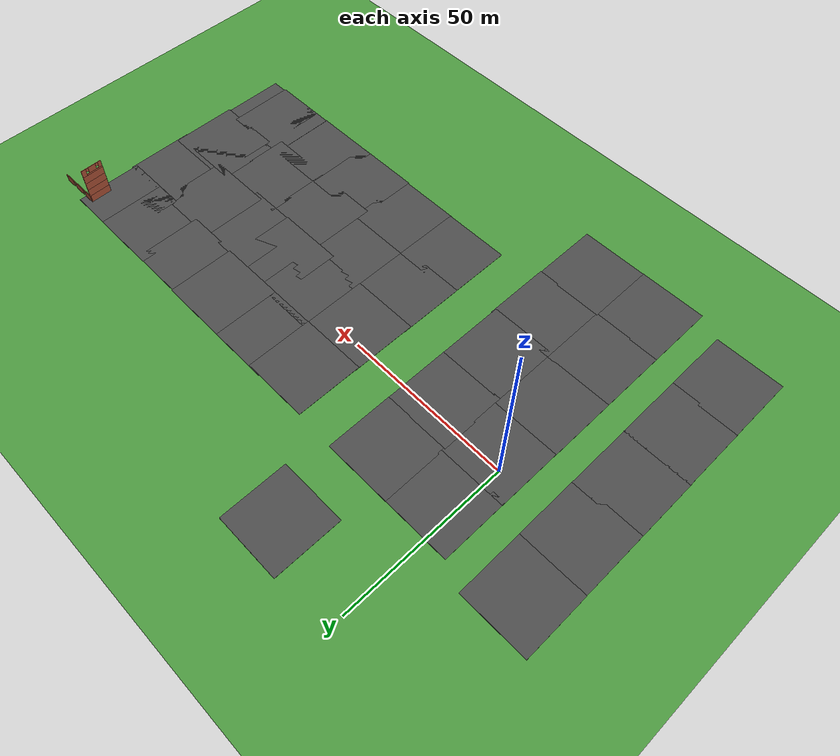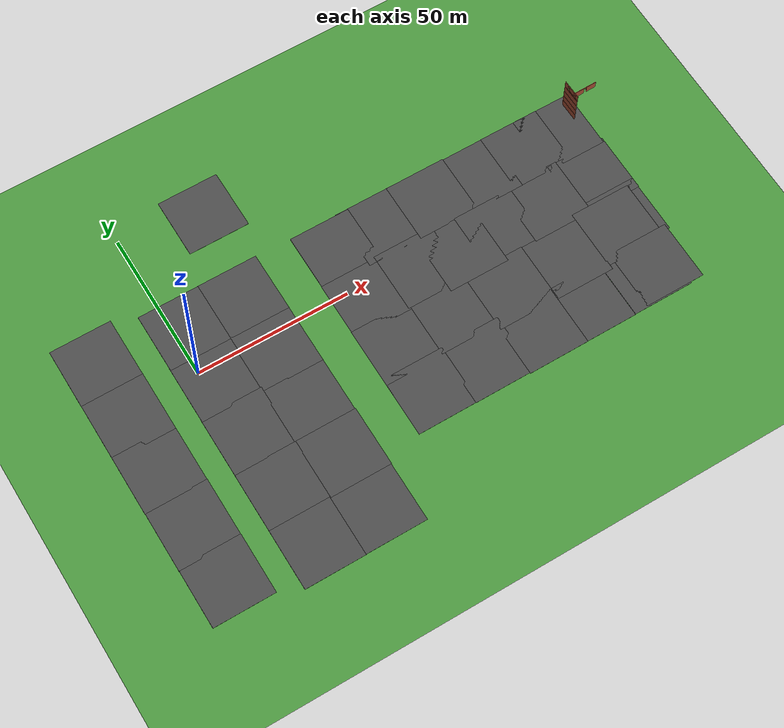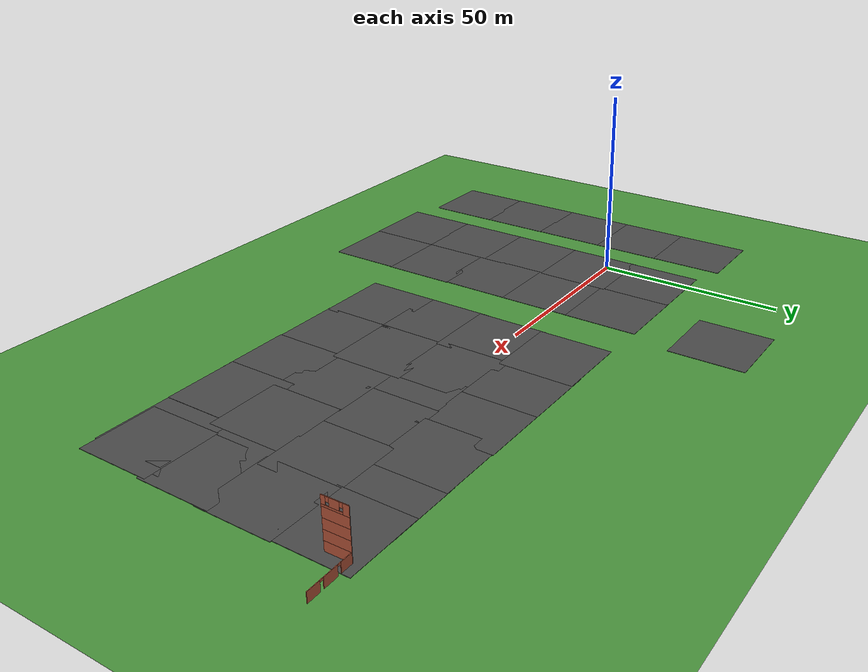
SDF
<sdf version="1.7">
 <world name="default">
  <model name="ground_plane">
   <static>1</static>
   <link name="link">
    <collision name="collision">
     <geometry><plane><normal>0 0 1</normal><size>100 100</size></plane></geometry>
     <surface>
      <contact><collide_bitmask>65535</collide_bitmask></contact>
      <friction><ode><mu>100</mu><mu2>50</mu2></ode></friction>
     </surface>
    </collision>
    <visual name="grass">
     <pose>0 0 -0.1 0 -0 0</pose>
     <cast_shadows>0</cast_shadows>
     <geometry><plane><normal>0 0 1</normal><size>1000 1000</size></plane></geometry>
     <material>
      <script><uri>file://media/materials/scripts/gazebo.material</uri><name>Gazebo/Grass</name></script>
     </material>
    </visual>
   </link>
  </model>
  <model name="asphalt_plane">
   <static>1</static>
   <link name="link">
    <collision name="collision"><geometry><box><size>20 20 0.1</size></box></geometry></collision>
    <visual name="visual">
     <cast_shadows>0</cast_shadows>
     <geometry><box><size>20 20 0.1</size></box></geometry>
     <material>
      <script>
       <uri>model://asphalt_plane/materials/scripts</uri>
       <uri>model://asphalt_plane/materials/textures</uri>
       <name>vrc/asphalt</name>
      </script>
     </material>
    </visual>
   </link>
   <pose>26.7323 45.4974 0 0 -0 0</pose>
  </model>
  <model name="asphalt_plane_3">
   <static>1</static>
   <link name="link">
    <collision name="collision"><geometry><box><size>20 20 0.1</size></box></geometry></collision>
    <visual name="visual">
     <cast_shadows>0</cast_shadows>
     <geometry><box><size>20 20 0.1</size></box></geometry>
     <material>
      <script>
       <uri>model://asphalt_plane/materials/scripts</uri>
       <uri>model://asphalt_plane/materials/textures</uri>
       <name>vrc/asphalt</name>
      </script>
     </material>
    </visual>
   </link>
   <pose>-23.9043 18.1213 0 0 -0 0</pose>
  </model>
  <model name="asphalt_plane_4">
   <static>1</static>
   <link name="link">
    <collision name="collision"><geometry><box><size>20 20 0.1</size></box></geometry></collision>
    <visual name="visual">
     <cast_shadows>0</cast_shadows>
     <geometry><box><size>20 20 0.1</size></box></geometry>
     <material>
      <script>
       <uri>model://asphalt_plane/materials/scripts</uri>
       <uri>model://asphalt_plane/materials/textures</uri>
       <name>vrc/asphalt</name>
      </script>
     </material>
    </visual>
   </link>
   <pose>-23.8635 -1.81275 0 0 -0 0</pose>
  </model>
  <model name="asphalt_plane_5">
   <static>1</static>
   <link name="link">
    <collision name="collision"><geometry><box><size>20 20 0.1</size></box></geometry></collision>
    <visual name="visual">
     <cast_shadows>0</cast_shadows>
     <geometry><box><size>20 20 0.1</size></box></geometry>
     <material>
      <script>
       <uri>model://asphalt_plane/materials/scripts</uri>
       <uri>model://asphalt_plane/materials/textures</uri>
       <name>vrc/asphalt</name>
      </script>
     </material>
    </visual>
   </link>
   <pose>-23.8605 -20.3721 0 0 -0 0</pose>
  </model>
  <model name="asphalt_plane_15">
   <static>1</static>
   <link name="link">
    <collision name="collision"><geometry><box><size>20 20 0.1</size></box></geometry></collision>
    <visual name="visual">
     <cast_shadows>0</cast_shadows>
     <geometry><box><size>20 20 0.1</size></box></geometry>
     <material>
      <script>
       <uri>model://asphalt_plane/materials/scripts</uri>
       <uri>model://asphalt_plane/materials/textures</uri>
       <name>vrc/asphalt</name>
      </script>
     </material>
    </visual>
   </link>
   <pose>54.6058 -4.08801 0 0 -0 0</pose>
  </model>
  <model name="asphalt_plane_16">
   <static>1</static>
   <link name="link">
    <collision name="collision"><geometry><box><size>20 20 0.1</size></box></geometry></collision>
    <visual name="visual">
     <cast_shadows>0</cast_shadows>
     <geometry><box><size>20 20 0.1</size></box></geometry>
     <material>
      <script>
       <uri>model://asphalt_plane/materials/scripts</uri>
       <uri>model://asphalt_plane/materials/textures</uri>
       <name>vrc/asphalt</name>
      </script>
     </material>
    </visual>
   </link>
   <pose>54.718 14.3936 0 0 -0 0</pose>
  </model>
  <model name="asphalt_plane_15_clone">
   <static>1</static>
   <link name="link">
    <collision name="collision"><geometry><box><size>20 20 0.1</size></box></geometry></collision>
    <visual name="visual">
     <cast_shadows>0</cast_shadows>
     <geometry><box><size>20 20 0.1</size></box></geometry>
     <material>
      <script>
       <uri>model://asphalt_plane/materials/scripts</uri>
       <uri>model://asphalt_plane/materials/textures</uri>
       <name>vrc/asphalt</name>
      </script>
     </material>
    </visual>
   </link>
   <pose>70.5176 14.5413 0 0 -0 0</pose>
  </model>
  <model name="asphalt_plane_15_clone_0">
   <static>1</static>
   <link name="link">
    <collision name="collision"><geometry><box><size>20 20 0.1</size></box></geometry></collision>
    <visual name="visual">
     <cast_shadows>0</cast_shadows>
     <geometry><box><size>20 20 0.1</size></box></geometry>
     <material>
      <script>
       <uri>model://asphalt_plane/materials/scripts</uri>
       <uri>model://asphalt_plane/materials/textures</uri>
       <name>vrc/asphalt</name>
      </script>
     </material>
    </visual>
   </link>
   <pose>88.2896 14.5224 0 0 -0 0</pose>
  </model>
  <model name="asphalt_plane_15_clone_1">
   <static>1</static>
   <link name="link">
    <collision name="collision"><geometry><box><size>20 20 0.1</size></box></geometry></collision>
    <visual name="visual">
     <cast_shadows>0</cast_shadows>
     <geometry><box><size>20 20 0.1</size></box></geometry>
     <material>
      <script>
       <uri>model://asphalt_plane/materials/scripts</uri>
       <uri>model://asphalt_plane/materials/textures</uri>
       <name>vrc/asphalt</name>
      </script>
     </material>
    </visual>
   </link>
   <pose>104.278 14.2611 0 0 -0 0</pose>
  </model>
  <model name="asphalt_plane_15_clone_2">
   <static>1</static>
   <link name="link">
    <collision name="collision"><geometry><box><size>20 20 0.1</size></box></geometry></collision>
    <visual name="visual">
     <cast_shadows>0</cast_shadows>
     <geometry><box><size>20 20 0.1</size></box></geometry>
     <material>
      <script>
       <uri>model://asphalt_plane/materials/scripts</uri>
       <uri>model://asphalt_plane/materials/textures</uri>
       <name>vrc/asphalt</name>
      </script>
     </material>
    </visual>
   </link>
   <pose>121.903 14.3393 0 0 -0 0</pose>
  </model>
  <model name="asphalt_plane_15_clone_3">
   <static>1</static>
   <link name="link">
    <collision name="collision"><geometry><box><size>20 20 0.1</size></box></geometry></collision>
    <visual name="visual">
     <cast_shadows>0</cast_shadows>
     <geometry><box><size>20 20 0.1</size></box></geometry>
     <material>
      <script>
       <uri>model://asphalt_plane/materials/scripts</uri>
       <uri>model://asphalt_plane/materials/textures</uri>
       <name>vrc/asphalt</name>
      </script>
     </material>
    </visual>
   </link>
   <pose>133.716 14.2705 0 0 -0 0</pose>
  </model>
  <model name="asphalt_plane_15_clone_4">
   <static>1</static>
   <link name="link">
    <collision name="collision"><geometry><box><size>20 20 0.1</size></box></geometry></collision>
    <visual name="visual">
     <cast_shadows>0</cast_shadows>
     <geometry><box><size>20 20 0.1</size></box></geometry>
     <material>
      <script>
       <uri>model://asphalt_plane/materials/scripts</uri>
       <uri>model://asphalt_plane/materials/textures</uri>
       <name>vrc/asphalt</name>
      </script>
     </material>
    </visual>
   </link>
   <pose>54.5062 -21.4907 0 0 -0 0</pose>
  </model>
  <model name="asphalt_plane_15_clone_5">
   <static>1</static>
   <link name="link">
    <collision name="collision"><geometry><box><size>20 20 0.1</size></box></geometry></collision>
    <visual name="visual">
     <cast_shadows>0</cast_shadows>
     <geometry><box><size>20 20 0.1</size></box></geometry>
     <material>
      <script>
       <uri>model://asphalt_plane/materials/scripts</uri>
       <uri>model://asphalt_plane/materials/textures</uri>
       <name>vrc/asphalt</name>
      </script>
     </material>
    </visual>
   </link>
   <pose>54.535 -39.3314 0 0 -0 0</pose>
  </model>
  <model name="asphalt_plane_15_clone_7">
   <static>1</static>
   <link name="link">
    <collision name="collision"><geometry><box><size>20 20 0.1</size></box></geometry></collision>
    <visual name="visual">
     <cast_shadows>0</cast_shadows>
     <geometry><box><size>20 20 0.1</size></box></geometry>
     <material>
      <script>
       <uri>model://asphalt_plane/materials/scripts</uri>
       <uri>model://asphalt_plane/materials/textures</uri>
       <name>vrc/asphalt</name>
      </script>
     </material>
    </visual>
   </link>
   <pose>73.605 -21.2666 0 0 -0 0</pose>
  </model>
  <model name="asphalt_plane_15_clone_8">
   <static>1</static>
   <link name="link">
    <collision name="collision"><geometry><box><size>20 20 0.1</size></box></geometry></collision>
    <visual name="visual">
     <cast_shadows>0</cast_shadows>
     <geometry><box><size>20 20 0.1</size></box></geometry>
     <material>
      <script>
       <uri>model://asphalt_plane/materials/scripts</uri>
       <uri>model://asphalt_plane/materials/textures</uri>
       <name>vrc/asphalt</name>
      </script>
     </material>
    </visual>
   </link>
   <pose>73.6563 -39.4133 0 0 -0 0</pose>
  </model>
  <model name="asphalt_plane_15_clone_2_clone_2">
   <static>1</static>
   <link name="link">
    <collision name="collision"><geometry><box><size>20 20 0.1</size></box></geometry></collision>
    <visual name="visual">
     <cast_shadows>0</cast_shadows>
     <geometry><box><size>20 20 0.1</size></box></geometry>
     <material>
      <script>
       <uri>model://asphalt_plane/materials/scripts</uri>
       <uri>model://asphalt_plane/materials/textures</uri>
       <name>vrc/asphalt</name>
      </script>
     </material>
    </visual>
   </link>
   <pose>92.3833 -23.3758 0 0 -0 0</pose>
  </model>
  <model name="asphalt_plane_15_clone_2_clone_3">
   <static>1</static>
   <link name="link">
    <collision name="collision"><geometry><box><size>20 20 0.1</size></box></geometry></collision>
    <visual name="visual">
     <cast_shadows>0</cast_shadows>
     <geometry><box><size>20 20 0.1</size></box></geometry>
     <material>
      <script>
       <uri>model://asphalt_plane/materials/scripts</uri>
       <uri>model://asphalt_plane/materials/textures</uri>
       <name>vrc/asphalt</name>
      </script>
     </material>
    </visual>
   </link>
   <pose>111.599 -23.5947 0 0 -0 0</pose>
  </model>
  <model name="asphalt_plane_15_clone_2_clone_1">
   <static>1</static>
   <link name="link">
    <collision name="collision"><geometry><box><size>20 20 0.1</size></box></geometry></collision>
    <visual name="visual">
     <cast_shadows>0</cast_shadows>
     <geometry><box><size>20 20 0.1</size></box></geometry>
     <material>
      <script>
       <uri>model://asphalt_plane/materials/scripts</uri>
       <uri>model://asphalt_plane/materials/textures</uri>
       <name>vrc/asphalt</name>
      </script>
     </material>
    </visual>
   </link>
   <pose>134.118 -4.34987 0 0 -0 0</pose>
  </model>
  <model name="asphalt_plane_15_clone_2_clone_0">
   <static>1</static>
   <link name="link">
    <collision name="collision"><geometry><box><size>20 20 0.1</size></box></geometry></collision>
    <visual name="visual">
     <cast_shadows>0</cast_shadows>
     <geometry><box><size>20 20 0.1</size></box></geometry>
     <material>
      <script>
       <uri>model://asphalt_plane/materials/scripts</uri>
       <uri>model://asphalt_plane/materials/textures</uri>
       <name>vrc/asphalt</name>
      </script>
     </material>
    </visual>
   </link>
   <pose>117.188 -4.07273 0 0 -0 0</pose>
  </model>
  <model name="asphalt_plane_15_clone_2_clone">
   <static>1</static>
   <link name="link">
    <collision name="collision"><geometry><box><size>20 20 0.1</size></box></geometry></collision>
    <visual name="visual">
     <cast_shadows>0</cast_shadows>
     <geometry><box><size>20 20 0.1</size></box></geometry>
     <material>
      <script>
       <uri>model://asphalt_plane/materials/scripts</uri>
       <uri>model://asphalt_plane/materials/textures</uri>
       <name>vrc/asphalt</name>
      </script>
     </material>
    </visual>
   </link>
   <pose>100.276 -4.89196 0 0 -0 0</pose>
  </model>
  <model name="asphalt_plane_15_clone_2_clone_5">
   <static>1</static>
   <link name="link">
    <collision name="collision"><geometry><box><size>20 20 0.1</size></box></geometry></collision>
    <visual name="visual">
     <cast_shadows>0</cast_shadows>
     <geometry><box><size>20 20 0.1</size></box></geometry>
     <material>
      <script>
       <uri>model://asphalt_plane/materials/scripts</uri>
       <uri>model://asphalt_plane/materials/textures</uri>
       <name>vrc/asphalt</name>
      </script>
     </material>
    </visual>
   </link>
   <pose>72.9682 -3.60679 0 0 -0 0</pose>
  </model>
  <model name="asphalt_plane_15_clone_2_clone_6">
   <static>1</static>
   <link name="link">
    <collision name="collision"><geometry><box><size>20 20 0.1</size></box></geometry></collision>
    <visual name="visual">
     <cast_shadows>0</cast_shadows>
     <geometry><box><size>20 20 0.1</size></box></geometry>
     <material>
      <script>
       <uri>model://asphalt_plane/materials/scripts</uri>
       <uri>model://asphalt_plane/materials/textures</uri>
       <name>vrc/asphalt</name>
      </script>
     </material>
    </visual>
   </link>
   <pose>86.6491 -5.14218 0 0 -0 0</pose>
  </model>
  <model name="asphalt_plane_15_clone_2_clone_4">
   <static>1</static>
   <link name="link">
    <collision name="collision"><geometry><box><size>20 20 0.1</size></box></geometry></collision>
    <visual name="visual">
     <cast_shadows>0</cast_shadows>
     <geometry><box><size>20 20 0.1</size></box></geometry>
     <material>
      <script>
       <uri>model://asphalt_plane/materials/scripts</uri>
       <uri>model://asphalt_plane/materials/textures</uri>
       <name>vrc/asphalt</name>
      </script>
     </material>
    </visual>
   </link>
   <pose>131.281 -22.1535 0 0 -0 0</pose>
  </model>
  <model name="asphalt_plane_15_clone_2_clone_7">
   <static>1</static>
   <link name="link">
    <collision name="collision"><geometry><box><size>20 20 0.1</size></box></geometry></collision>
    <visual name="visual">
     <cast_shadows>0</cast_shadows>
     <geometry><box><size>20 20 0.1</size></box></geometry>
     <material>
      <script>
       <uri>model://asphalt_plane/materials/scripts</uri>
       <uri>model://asphalt_plane/materials/textures</uri>
       <name>vrc/asphalt</name>
      </script>
     </material>
    </visual>
   </link>
   <pose>92.1022 -39.6823 0 0 -0 0</pose>
  </model>
  <model name="asphalt_plane_15_clone_2_clone_8">
   <static>1</static>
   <link name="link">
    <collision name="collision"><geometry><box><size>20 20 0.1</size></box></geometry></collision>
    <visual name="visual">
     <cast_shadows>0</cast_shadows>
     <geometry><box><size>20 20 0.1</size></box></geometry>
     <material>
      <script>
       <uri>model://asphalt_plane/materials/scripts</uri>
       <uri>model://asphalt_plane/materials/textures</uri>
       <name>vrc/asphalt</name>
      </script>
     </material>
    </visual>
   </link>
   <pose>108.868 -39.6334 0 0 -0 0</pose>
  </model>
  <model name="asphalt_plane_15_clone_2_clone_9">
   <static>1</static>
   <link name="link">
    <collision name="collision"><geometry><box><size>20 20 0.1</size></box></geometry></collision>
    <visual name="visual">
     <cast_shadows>0</cast_shadows>
     <geometry><box><size>20 20 0.1</size></box></geometry>
     <material>
      <script>
       <uri>model://asphalt_plane/materials/scripts</uri>
       <uri>model://asphalt_plane/materials/textures</uri>
       <name>vrc/asphalt</name>
      </script>
     </material>
    </visual>
   </link>
   <pose>128.92 -39.5345 0 0 -0 0</pose>
  </model>
  <model name="asphalt_plane_15_clone_2_clone_10">
   <static>1</static>
   <link name="link">
    <collision name="collision"><geometry><box><size>20 20 0.1</size></box></geometry></collision>
    <visual name="visual">
     <cast_shadows>0</cast_shadows>
     <geometry><box><size>20 20 0.1</size></box></geometry>
     <material>
      <script>
       <uri>model://asphalt_plane/materials/scripts</uri>
       <uri>model://asphalt_plane/materials/textures</uri>
       <name>vrc/asphalt</name>
      </script>
     </material>
    </visual>
   </link>
   <pose>133.337 -39.1111 0 0 -0 0</pose>
  </model>
  <model name="asphalt_plane_15_clone_2_clone_11">
   <static>1</static>
   <link name="link">
    <collision name="collision"><geometry><box><size>20 20 0.1</size></box></geometry></collision>
    <visual name="visual">
     <cast_shadows>0</cast_shadows>
     <geometry><box><size>20 20 0.1</size></box></geometry>
     <material>
      <script>
       <uri>model://asphalt_plane/materials/scripts</uri>
       <uri>model://asphalt_plane/materials/textures</uri>
       <name>vrc/asphalt</name>
      </script>
     </material>
    </visual>
   </link>
   <pose>133.916 -20.8174 0 0 -0 0</pose>
  </model>
  <model name="my_building_1">
   <link name="Wall_19">
    <pose>-0.950574 0 0 0 -0 1.5708</pose>
    <visual name="Wall_19_Visual_3">
     <pose>-2.20979 0 2.25 0 -0 0</pose>
     <geometry><box><size>0.9 0.15 0.5</size></box></geometry>
     <material>
      <script><uri>file://media/materials/scripts/gazebo.material</uri><name>Gazebo/Bricks</name></script>
      <ambient>1 1 1 1</ambient>
      <shader type="pixel"/>
     </material>
     <meta><layer>0</layer></meta>
    </visual>
    <visual name="Wall_19_Visual_2">
     <pose>4.53056 0 1.25 0 -0 0</pose>
     <geometry><box><size>3.18887 0.15 2.5</size></box></geometry>
     <material>
      <script><uri>file://media/materials/scripts/gazebo.material</uri><name>Gazebo/Bricks</name></script>
      <ambient>1 1 1 1</ambient>
      <shader type="pixel"/>
     </material>
     <meta><layer>0</layer></meta>
    </visual>
    <visual name="Wall_19_Visual_4">
     <pose>2.48613 0 2.25 0 -0 0</pose>
     <geometry><box><size>0.9 0.15 0.5</size></box></geometry>
     <material>
      <script><uri>file://media/materials/scripts/gazebo.material</uri><name>Gazebo/Bricks</name></script>
      <ambient>1 1 1 1</ambient>
      <shader type="pixel"/>
     </material>
     <meta><layer>0</layer></meta>
    </visual>
    <visual name="Wall_19_Visual_1">
     <pose>0.138171 0 1.25 0 -0 0</pose>
     <geometry><box><size>3.79591 0.15 2.5</size></box></geometry>
     <material>
      <script><uri>file://media/materials/scripts/gazebo.material</uri><name>Gazebo/Bricks</name></script>
      <ambient>1 1 1 1</ambient>
      <shader type="pixel"/>
     </material>
     <meta><layer>0</layer></meta>
    </visual>
    <visual name="Wall_19_Visual_0">
     <pose>-4.39239 0 1.25 0 -0 0</pose>
     <geometry><box><size>3.46522 0.15 2.5</size></box></geometry>
     <material>
      <script><uri>file://media/materials/scripts/gazebo.material</uri><name>Gazebo/Bricks</name></script>
      <ambient>1 1 1 1</ambient>
      <shader type="pixel"/>
     </material>
     <meta><layer>0</layer></meta>
    </visual>
    <collision name="Wall_19_Collision_0">
     <pose>-4.39239 0 1.25 0 -0 0</pose>
     <geometry><box><size>3.46522 0.15 2.5</size></box></geometry>
     <surface>
      <friction>
       <ode><mu>1</mu><mu2>1</mu2><fdir1>0 0 0</fdir1><slip1>0</slip1><slip2>0</slip2></ode>
       <torsional>
        <coefficient>1</coefficient>
        <patch_radius>0</patch_radius>
        <surface_radius>0</surface_radius>
        <use_patch_radius>1</use_patch_radius>
        <ode><slip>0</slip></ode>
       </torsional>
      </friction>
      <bounce><restitution_coefficient>0</restitution_coefficient><threshold>1e+06</threshold></bounce>
      <contact>
       <collide_without_contact>0</collide_without_contact>
       <collide_without_contact_bitmask>1</collide_without_contact_bitmask>
       <collide_bitmask>1</collide_bitmask>
       <ode>
        <soft_cfm>0</soft_cfm>
        <soft_erp>0.2</soft_erp>
        <kp>1e+13</kp>
        <kd>1</kd>
        <max_vel>0.01</max_vel>
        <min_depth>0</min_depth>
       </ode>
       <bullet>
        <split_impulse>1</split_impulse>
        <split_impulse_penetration_threshold>-0.01</split_impulse_penetration_threshold>
        <soft_cfm>0</soft_cfm>
        <soft_erp>0.2</soft_erp>
        <kp>1e+13</kp>
        <kd>1</kd>
       </bullet>
      </contact>
     </surface>
    </collision>
    <collision name="Wall_19_Collision_2">
     <pose>4.53056 0 1.25 0 -0 0</pose>
     <geometry><box><size>3.18887 0.15 2.5</size></box></geometry>
     <surface>
      <friction>
       <ode><mu>1</mu><mu2>1</mu2><fdir1>0 0 0</fdir1><slip1>0</slip1><slip2>0</slip2></ode>
       <torsional>
        <coefficient>1</coefficient>
        <patch_radius>0</patch_radius>
        <surface_radius>0</surface_radius>
        <use_patch_radius>1</use_patch_radius>
        <ode><slip>0</slip></ode>
       </torsional>
      </friction>
      <bounce><restitution_coefficient>0</restitution_coefficient><threshold>1e+06</threshold></bounce>
      <contact>
       <collide_without_contact>0</collide_without_contact>
       <collide_without_contact_bitmask>1</collide_without_contact_bitmask>
       <collide_bitmask>1</collide_bitmask>
       <ode>
        <soft_cfm>0</soft_cfm>
        <soft_erp>0.2</soft_erp>
        <kp>1e+13</kp>
        <kd>1</kd>
        <max_vel>0.01</max_vel>
        <min_depth>0</min_depth>
       </ode>
       <bullet>
        <split_impulse>1</split_impulse>
        <split_impulse_penetration_threshold>-0.01</split_impulse_penetration_threshold>
        <soft_cfm>0</soft_cfm>
        <soft_erp>0.2</soft_erp>
        <kp>1e+13</kp>
        <kd>1</kd>
       </bullet>
      </contact>
     </surface>
    </collision>
    <collision name="Wall_19_Collision_4">
     <pose>2.48613 0 2.25 0 -0 0</pose>
     <geometry><box><size>0.9 0.15 0.5</size></box></geometry>
     <surface>
      <friction>
       <ode><mu>1</mu><mu2>1</mu2><fdir1>0 0 0</fdir1><slip1>0</slip1><slip2>0</slip2></ode>
       <torsional>
        <coefficient>1</coefficient>
        <patch_radius>0</patch_radius>
        <surface_radius>0</surface_radius>
        <use_patch_radius>1</use_patch_radius>
        <ode><slip>0</slip></ode>
       </torsional>
      </friction>
      <bounce><restitution_coefficient>0</restitution_coefficient><threshold>1e+06</threshold></bounce>
      <contact>
       <collide_without_contact>0</collide_without_contact>
       <collide_without_contact_bitmask>1</collide_without_contact_bitmask>
       <collide_bitmask>1</collide_bitmask>
       <ode>
        <soft_cfm>0</soft_cfm>
        <soft_erp>0.2</soft_erp>
        <kp>1e+13</kp>
        <kd>1</kd>
        <max_vel>0.01</max_vel>
        <min_depth>0</min_depth>
       </ode>
       <bullet>
        <split_impulse>1</split_impulse>
        <split_impulse_penetration_threshold>-0.01</split_impulse_penetration_threshold>
        <soft_cfm>0</soft_cfm>
        <soft_erp>0.2</soft_erp>
        <kp>1e+13</kp>
        <kd>1</kd>
       </bullet>
      </contact>
     </surface>
    </collision>
    <collision name="Wall_19_Collision_3">
     <pose>-2.20979 0 2.25 0 -0 0</pose>
     <geometry><box><size>0.9 0.15 0.5</size></box></geometry>
     <surface>
      <friction>
       <ode><mu>1</mu><mu2>1</mu2><fdir1>0 0 0</fdir1><slip1>0</slip1><slip2>0</slip2></ode>
       <torsional>
        <coefficient>1</coefficient>
        <patch_radius>0</patch_radius>
        <surface_radius>0</surface_radius>
        <use_patch_radius>1</use_patch_radius>
        <ode><slip>0</slip></ode>
       </torsional>
      </friction>
      <bounce><restitution_coefficient>0</restitution_coefficient><threshold>1e+06</threshold></bounce>
      <contact>
       <collide_without_contact>0</collide_without_contact>
       <collide_without_contact_bitmask>1</collide_without_contact_bitmask>
       <collide_bitmask>1</collide_bitmask>
       <ode>
        <soft_cfm>0</soft_cfm>
        <soft_erp>0.2</soft_erp>
        <kp>1e+13</kp>
        <kd>1</kd>
        <max_vel>0.01</max_vel>
        <min_depth>0</min_depth>
       </ode>
       <bullet>
        <split_impulse>1</split_impulse>
        <split_impulse_penetration_threshold>-0.01</split_impulse_penetration_threshold>
        <soft_cfm>0</soft_cfm>
        <soft_erp>0.2</soft_erp>
        <kp>1e+13</kp>
        <kd>1</kd>
       </bullet>
      </contact>
     </surface>
    </collision>
    <collision name="Wall_19_Collision_1">
     <pose>0.138171 0 1.25 0 -0 0</pose>
     <geometry><box><size>3.79591 0.15 2.5</size></box></geometry>
     <surface>
      <friction>
       <ode><mu>1</mu><mu2>1</mu2><fdir1>0 0 0</fdir1><slip1>0</slip1><slip2>0</slip2></ode>
       <torsional>
        <coefficient>1</coefficient>
        <patch_radius>0</patch_radius>
        <surface_radius>0</surface_radius>
        <use_patch_radius>1</use_patch_radius>
        <ode><slip>0</slip></ode>
       </torsional>
      </friction>
      <bounce><restitution_coefficient>0</restitution_coefficient><threshold>1e+06</threshold></bounce>
      <contact>
       <collide_without_contact>0</collide_without_contact>
       <collide_without_contact_bitmask>1</collide_without_contact_bitmask>
       <collide_bitmask>1</collide_bitmask>
       <ode>
        <soft_cfm>0</soft_cfm>
        <soft_erp>0.2</soft_erp>
        <kp>1e+13</kp>
        <kd>1</kd>
        <max_vel>0.01</max_vel>
        <min_depth>0</min_depth>
       </ode>
       <bullet>
        <split_impulse>1</split_impulse>
        <split_impulse_penetration_threshold>-0.01</split_impulse_penetration_threshold>
        <soft_cfm>0</soft_cfm>
        <soft_erp>0.2</soft_erp>
        <kp>1e+13</kp>
        <kd>1</kd>
       </bullet>
      </contact>
     </surface>
    </collision>
   </link>
   <link name="Wall_20">
    <pose>-4.12557 6.05 0 0 -0 3.14159</pose>
    <visual name="Wall_20_Visual">
     <pose>0 0 1.25 0 -0 0</pose>
     <geometry><box><size>6.5 0.15 2.5</size></box></geometry>
     <material>
      <script><uri>file://media/materials/scripts/gazebo.material</uri><name>Gazebo/Bricks</name></script>
      <ambient>1 1 1 1</ambient>
      <shader type="pixel"/>
     </material>
     <meta><layer>0</layer></meta>
    </visual>
    <collision name="Wall_20_Collision">
     <pose>0 0 1.25 0 -0 0</pose>
     <geometry><box><size>6.5 0.15 2.5</size></box></geometry>
     <surface>
      <friction>
       <ode><mu>1</mu><mu2>1</mu2><fdir1>0 0 0</fdir1><slip1>0</slip1><slip2>0</slip2></ode>
       <torsional>
        <coefficient>1</coefficient>
        <patch_radius>0</patch_radius>
        <surface_radius>0</surface_radius>
        <use_patch_radius>1</use_patch_radius>
        <ode><slip>0</slip></ode>
       </torsional>
      </friction>
      <bounce><restitution_coefficient>0</restitution_coefficient><threshold>1e+06</threshold></bounce>
      <contact>
       <collide_without_contact>0</collide_without_contact>
       <collide_without_contact_bitmask>1</collide_without_contact_bitmask>
       <collide_bitmask>1</collide_bitmask>
       <ode>
        <soft_cfm>0</soft_cfm>
        <soft_erp>0.2</soft_erp>
        <kp>1e+13</kp>
        <kd>1</kd>
        <max_vel>0.01</max_vel>
        <min_depth>0</min_depth>
       </ode>
       <bullet>
        <split_impulse>1</split_impulse>
        <split_impulse_penetration_threshold>-0.01</split_impulse_penetration_threshold>
        <soft_cfm>0</soft_cfm>
        <soft_erp>0.2</soft_erp>
        <kp>1e+13</kp>
        <kd>1</kd>
       </bullet>
      </contact>
     </surface>
    </collision>
   </link>
   <link name="Wall_77">
    <pose>-4.12557 6.05 2.5 0 -0 3.14159</pose>
    <visual name="Wall_77_Visual">
     <pose>0 0 1.25 0 -0 0</pose>
     <geometry><box><size>6.5 0.15 2.5</size></box></geometry>
     <material>
      <script><uri>file://media/materials/scripts/gazebo.material</uri><name>Gazebo/Bricks</name></script>
      <ambient>1 1 1 1</ambient>
      <shader type="pixel"/>
     </material>
     <meta><layer>1</layer></meta>
    </visual>
    <collision name="Wall_77_Collision">
     <pose>0 0 1.25 0 -0 0</pose>
     <geometry><box><size>6.5 0.15 2.5</size></box></geometry>
     <surface>
      <friction>
       <ode><mu>1</mu><mu2>1</mu2><fdir1>0 0 0</fdir1><slip1>0</slip1><slip2>0</slip2></ode>
       <torsional>
        <coefficient>1</coefficient>
        <patch_radius>0</patch_radius>
        <surface_radius>0</surface_radius>
        <use_patch_radius>1</use_patch_radius>
        <ode><slip>0</slip></ode>
       </torsional>
      </friction>
      <bounce><restitution_coefficient>0</restitution_coefficient><threshold>1e+06</threshold></bounce>
      <contact>
       <collide_without_contact>0</collide_without_contact>
       <collide_without_contact_bitmask>1</collide_without_contact_bitmask>
       <collide_bitmask>1</collide_bitmask>
       <ode>
        <soft_cfm>0</soft_cfm>
        <soft_erp>0.2</soft_erp>
        <kp>1e+13</kp>
        <kd>1</kd>
        <max_vel>0.01</max_vel>
        <min_depth>0</min_depth>
       </ode>
       <bullet>
        <split_impulse>1</split_impulse>
        <split_impulse_penetration_threshold>-0.01</split_impulse_penetration_threshold>
        <soft_cfm>0</soft_cfm>
        <soft_erp>0.2</soft_erp>
        <kp>1e+13</kp>
        <kd>1</kd>
       </bullet>
      </contact>
     </surface>
    </collision>
   </link>
   <link name="Wall_81">
    <pose>-4.12557 6.05 5 0 -0 3.14159</pose>
    <visual name="Wall_81_Visual">
     <pose>0 0 1.25 0 -0 0</pose>
     <geometry><box><size>6.5 0.15 2.5</size></box></geometry>
     <material>
      <script><uri>file://media/materials/scripts/gazebo.material</uri><name>Gazebo/Bricks</name></script>
      <ambient>1 1 1 1</ambient>
      <shader type="pixel"/>
     </material>
     <meta><layer>2</layer></meta>
    </visual>
    <collision name="Wall_81_Collision">
     <pose>0 0 1.25 0 -0 0</pose>
     <geometry><box><size>6.5 0.15 2.5</size></box></geometry>
     <surface>
      <friction>
       <ode><mu>1</mu><mu2>1</mu2><fdir1>0 0 0</fdir1><slip1>0</slip1><slip2>0</slip2></ode>
       <torsional>
        <coefficient>1</coefficient>
        <patch_radius>0</patch_radius>
        <surface_radius>0</surface_radius>
        <use_patch_radius>1</use_patch_radius>
        <ode><slip>0</slip></ode>
       </torsional>
      </friction>
      <bounce><restitution_coefficient>0</restitution_coefficient><threshold>1e+06</threshold></bounce>
      <contact>
       <collide_without_contact>0</collide_without_contact>
       <collide_without_contact_bitmask>1</collide_without_contact_bitmask>
       <collide_bitmask>1</collide_bitmask>
       <ode>
        <soft_cfm>0</soft_cfm>
        <soft_erp>0.2</soft_erp>
        <kp>1e+13</kp>
        <kd>1</kd>
        <max_vel>0.01</max_vel>
        <min_depth>0</min_depth>
       </ode>
       <bullet>
        <split_impulse>1</split_impulse>
        <split_impulse_penetration_threshold>-0.01</split_impulse_penetration_threshold>
        <soft_cfm>0</soft_cfm>
        <soft_erp>0.2</soft_erp>
        <kp>1e+13</kp>
        <kd>1</kd>
       </bullet>
      </contact>
     </surface>
    </collision>
   </link>
   <link name="Wall_85">
    <pose>-4.12557 6.05 7.5 0 -0 3.14159</pose>
    <visual name="Wall_85_Visual">
     <pose>0 0 1.25 0 -0 0</pose>
     <geometry><box><size>6.5 0.15 2.5</size></box></geometry>
     <material>
      <script><uri>file://media/materials/scripts/gazebo.material</uri><name>Gazebo/Bricks</name></script>
      <ambient>1 1 1 1</ambient>
      <shader type="pixel"/>
     </material>
     <meta><layer>3</layer></meta>
    </visual>
    <collision name="Wall_85_Collision">
     <pose>0 0 1.25 0 -0 0</pose>
     <geometry><box><size>6.5 0.15 2.5</size></box></geometry>
     <surface>
      <friction>
       <ode><mu>1</mu><mu2>1</mu2><fdir1>0 0 0</fdir1><slip1>0</slip1><slip2>0</slip2></ode>
       <torsional>
        <coefficient>1</coefficient>
        <patch_radius>0</patch_radius>
        <surface_radius>0</surface_radius>
        <use_patch_radius>1</use_patch_radius>
        <ode><slip>0</slip></ode>
       </torsional>
      </friction>
      <bounce><restitution_coefficient>0</restitution_coefficient><threshold>1e+06</threshold></bounce>
      <contact>
       <collide_without_contact>0</collide_without_contact>
       <collide_without_contact_bitmask>1</collide_without_contact_bitmask>
       <collide_bitmask>1</collide_bitmask>
       <ode>
        <soft_cfm>0</soft_cfm>
        <soft_erp>0.2</soft_erp>
        <kp>1e+13</kp>
        <kd>1</kd>
        <max_vel>0.01</max_vel>
        <min_depth>0</min_depth>
       </ode>
       <bullet>
        <split_impulse>1</split_impulse>
        <split_impulse_penetration_threshold>-0.01</split_impulse_penetration_threshold>
        <soft_cfm>0</soft_cfm>
        <soft_erp>0.2</soft_erp>
        <kp>1e+13</kp>
        <kd>1</kd>
       </bullet>
      </contact>
     </surface>
    </collision>
   </link>
   <link name="Wall_89">
    <pose>-4.12557 6.05 10 0 -0 3.14159</pose>
    <visual name="Wall_89_Visual_5">
     <pose>1.78441 0 1.9 0 -0 0</pose>
     <geometry><box><size>0.8 0.15 1.2</size></box></geometry>
     <material>
      <script><uri>file://media/materials/scripts/gazebo.material</uri><name>Gazebo/Bricks</name></script>
      <ambient>1 1 1 1</ambient>
      <shader type="pixel"/>
     </material>
     <meta><layer>4</layer></meta>
    </visual>
    <visual name="Wall_89_Visual_2">
     <pose>0.201698 0 1.5 0 -0 0</pose>
     <geometry><box><size>2.36542 0.15 2</size></box></geometry>
     <material>
      <script><uri>file://media/materials/scripts/gazebo.material</uri><name>Gazebo/Bricks</name></script>
      <ambient>1 1 1 1</ambient>
      <shader type="pixel"/>
     </material>
     <meta><layer>4</layer></meta>
    </visual>
    <visual name="Wall_89_Visual_4">
     <pose>-1.38101 0 1.9 0 -0 0</pose>
     <geometry><box><size>0.8 0.15 1.2</size></box></geometry>
     <material>
      <script><uri>file://media/materials/scripts/gazebo.material</uri><name>Gazebo/Bricks</name></script>
      <ambient>1 1 1 1</ambient>
      <shader type="pixel"/>
     </material>
     <meta><layer>4</layer></meta>
    </visual>
    <visual name="Wall_89_Visual_3">
     <pose>2.7172 0 1.5 0 -0 0</pose>
     <geometry><box><size>1.06559 0.15 2</size></box></geometry>
     <material>
      <script><uri>file://media/materials/scripts/gazebo.material</uri><name>Gazebo/Bricks</name></script>
      <ambient>1 1 1 1</ambient>
      <shader type="pixel"/>
     </material>
     <meta><layer>4</layer></meta>
    </visual>
    <visual name="Wall_89_Visual_0">
     <pose>-2.51551 0 1.25 0 -0 0</pose>
     <geometry><box><size>1.46899 0.15 2.5</size></box></geometry>
     <material>
      <script><uri>file://media/materials/scripts/gazebo.material</uri><name>Gazebo/Bricks</name></script>
      <ambient>1 1 1 1</ambient>
      <shader type="pixel"/>
     </material>
     <meta><layer>4</layer></meta>
    </visual>
    <visual name="Wall_89_Visual_1">
     <pose>0.734493 0 0.25 0 -0 0</pose>
     <geometry><box><size>5.03101 0.15 0.5</size></box></geometry>
     <material>
      <script><uri>file://media/materials/scripts/gazebo.material</uri><name>Gazebo/Bricks</name></script>
      <ambient>1 1 1 1</ambient>
      <shader type="pixel"/>
     </material>
     <meta><layer>4</layer></meta>
    </visual>
    <collision name="Wall_89_Collision_5">
     <pose>1.78441 0 1.9 0 -0 0</pose>
     <geometry><box><size>0.8 0.15 1.2</size></box></geometry>
     <surface>
      <friction>
       <ode><mu>1</mu><mu2>1</mu2><fdir1>0 0 0</fdir1><slip1>0</slip1><slip2>0</slip2></ode>
       <torsional>
        <coefficient>1</coefficient>
        <patch_radius>0</patch_radius>
        <surface_radius>0</surface_radius>
        <use_patch_radius>1</use_patch_radius>
        <ode><slip>0</slip></ode>
       </torsional>
      </friction>
      <bounce><restitution_coefficient>0</restitution_coefficient><threshold>1e+06</threshold></bounce>
      <contact>
       <collide_without_contact>0</collide_without_contact>
       <collide_without_contact_bitmask>1</collide_without_contact_bitmask>
       <collide_bitmask>1</collide_bitmask>
       <ode>
        <soft_cfm>0</soft_cfm>
        <soft_erp>0.2</soft_erp>
        <kp>1e+13</kp>
        <kd>1</kd>
        <max_vel>0.01</max_vel>
        <min_depth>0</min_depth>
       </ode>
       <bullet>
        <split_impulse>1</split_impulse>
        <split_impulse_penetration_threshold>-0.01</split_impulse_penetration_threshold>
        <soft_cfm>0</soft_cfm>
        <soft_erp>0.2</soft_erp>
        <kp>1e+13</kp>
        <kd>1</kd>
       </bullet>
      </contact>
     </surface>
    </collision>
    <collision name="Wall_89_Collision_4">
     <pose>-1.38101 0 1.9 0 -0 0</pose>
     <geometry><box><size>0.8 0.15 1.2</size></box></geometry>
     <surface>
      <friction>
       <ode><mu>1</mu><mu2>1</mu2><fdir1>0 0 0</fdir1><slip1>0</slip1><slip2>0</slip2></ode>
       <torsional>
        <coefficient>1</coefficient>
        <patch_radius>0</patch_radius>
        <surface_radius>0</surface_radius>
        <use_patch_radius>1</use_patch_radius>
        <ode><slip>0</slip></ode>
       </torsional>
      </friction>
      <bounce><restitution_coefficient>0</restitution_coefficient><threshold>1e+06</threshold></bounce>
      <contact>
       <collide_without_contact>0</collide_without_contact>
       <collide_without_contact_bitmask>1</collide_without_contact_bitmask>
       <collide_bitmask>1</collide_bitmask>
       <ode>
        <soft_cfm>0</soft_cfm>
        <soft_erp>0.2</soft_erp>
        <kp>1e+13</kp>
        <kd>1</kd>
        <max_vel>0.01</max_vel>
        <min_depth>0</min_depth>
       </ode>
       <bullet>
        <split_impulse>1</split_impulse>
        <split_impulse_penetration_threshold>-0.01</split_impulse_penetration_threshold>
        <soft_cfm>0</soft_cfm>
        <soft_erp>0.2</soft_erp>
        <kp>1e+13</kp>
        <kd>1</kd>
       </bullet>
      </contact>
     </surface>
    </collision>
    <collision name="Wall_89_Collision_1">
     <pose>0.734493 0 0.25 0 -0 0</pose>
     <geometry><box><size>5.03101 0.15 0.5</size></box></geometry>
     <surface>
      <friction>
       <ode><mu>1</mu><mu2>1</mu2><fdir1>0 0 0</fdir1><slip1>0</slip1><slip2>0</slip2></ode>
       <torsional>
        <coefficient>1</coefficient>
        <patch_radius>0</patch_radius>
        <surface_radius>0</surface_radius>
        <use_patch_radius>1</use_patch_radius>
        <ode><slip>0</slip></ode>
       </torsional>
      </friction>
      <bounce><restitution_coefficient>0</restitution_coefficient><threshold>1e+06</threshold></bounce>
      <contact>
       <collide_without_contact>0</collide_without_contact>
       <collide_without_contact_bitmask>1</collide_without_contact_bitmask>
       <collide_bitmask>1</collide_bitmask>
       <ode>
        <soft_cfm>0</soft_cfm>
        <soft_erp>0.2</soft_erp>
        <kp>1e+13</kp>
        <kd>1</kd>
        <max_vel>0.01</max_vel>
        <min_depth>0</min_depth>
       </ode>
       <bullet>
        <split_impulse>1</split_impulse>
        <split_impulse_penetration_threshold>-0.01</split_impulse_penetration_threshold>
        <soft_cfm>0</soft_cfm>
        <soft_erp>0.2</soft_erp>
        <kp>1e+13</kp>
        <kd>1</kd>
       </bullet>
      </contact>
     </surface>
    </collision>
    <collision name="Wall_89_Collision_0">
     <pose>-2.51551 0 1.25 0 -0 0</pose>
     <geometry><box><size>1.46899 0.15 2.5</size></box></geometry>
     <surface>
      <friction>
       <ode><mu>1</mu><mu2>1</mu2><fdir1>0 0 0</fdir1><slip1>0</slip1><slip2>0</slip2></ode>
       <torsional>
        <coefficient>1</coefficient>
        <patch_radius>0</patch_radius>
        <surface_radius>0</surface_radius>
        <use_patch_radius>1</use_patch_radius>
        <ode><slip>0</slip></ode>
       </torsional>
      </friction>
      <bounce><restitution_coefficient>0</restitution_coefficient><threshold>1e+06</threshold></bounce>
      <contact>
       <collide_without_contact>0</collide_without_contact>
       <collide_without_contact_bitmask>1</collide_without_contact_bitmask>
       <collide_bitmask>1</collide_bitmask>
       <ode>
        <soft_cfm>0</soft_cfm>
        <soft_erp>0.2</soft_erp>
        <kp>1e+13</kp>
        <kd>1</kd>
        <max_vel>0.01</max_vel>
        <min_depth>0</min_depth>
       </ode>
       <bullet>
        <split_impulse>1</split_impulse>
        <split_impulse_penetration_threshold>-0.01</split_impulse_penetration_threshold>
        <soft_cfm>0</soft_cfm>
        <soft_erp>0.2</soft_erp>
        <kp>1e+13</kp>
        <kd>1</kd>
       </bullet>
      </contact>
     </surface>
    </collision>
    <collision name="Wall_89_Collision_2">
     <pose>0.201698 0 1.5 0 -0 0</pose>
     <geometry><box><size>2.36542 0.15 2</size></box></geometry>
     <surface>
      <friction>
       <ode><mu>1</mu><mu2>1</mu2><fdir1>0 0 0</fdir1><slip1>0</slip1><slip2>0</slip2></ode>
       <torsional>
        <coefficient>1</coefficient>
        <patch_radius>0</patch_radius>
        <surface_radius>0</surface_radius>
        <use_patch_radius>1</use_patch_radius>
        <ode><slip>0</slip></ode>
       </torsional>
      </friction>
      <bounce><restitution_coefficient>0</restitution_coefficient><threshold>1e+06</threshold></bounce>
      <contact>
       <collide_without_contact>0</collide_without_contact>
       <collide_without_contact_bitmask>1</collide_without_contact_bitmask>
       <collide_bitmask>1</collide_bitmask>
       <ode>
        <soft_cfm>0</soft_cfm>
        <soft_erp>0.2</soft_erp>
        <kp>1e+13</kp>
        <kd>1</kd>
        <max_vel>0.01</max_vel>
        <min_depth>0</min_depth>
       </ode>
       <bullet>
        <split_impulse>1</split_impulse>
        <split_impulse_penetration_threshold>-0.01</split_impulse_penetration_threshold>
        <soft_cfm>0</soft_cfm>
        <soft_erp>0.2</soft_erp>
        <kp>1e+13</kp>
        <kd>1</kd>
       </bullet>
      </contact>
     </surface>
    </collision>
    <collision name="Wall_89_Collision_3">
     <pose>2.7172 0 1.5 0 -0 0</pose>
     <geometry><box><size>1.06559 0.15 2</size></box></geometry>
     <surface>
      <friction>
       <ode><mu>1</mu><mu2>1</mu2><fdir1>0 0 0</fdir1><slip1>0</slip1><slip2>0</slip2></ode>
       <torsional>
        <coefficient>1</coefficient>
        <patch_radius>0</patch_radius>
        <surface_radius>0</surface_radius>
        <use_patch_radius>1</use_patch_radius>
        <ode><slip>0</slip></ode>
       </torsional>
      </friction>
      <bounce><restitution_coefficient>0</restitution_coefficient><threshold>1e+06</threshold></bounce>
      <contact>
       <collide_without_contact>0</collide_without_contact>
       <collide_without_contact_bitmask>1</collide_without_contact_bitmask>
       <collide_bitmask>1</collide_bitmask>
       <ode>
        <soft_cfm>0</soft_cfm>
        <soft_erp>0.2</soft_erp>
        <kp>1e+13</kp>
        <kd>1</kd>
        <max_vel>0.01</max_vel>
        <min_depth>0</min_depth>
       </ode>
       <bullet>
        <split_impulse>1</split_impulse>
        <split_impulse_penetration_threshold>-0.01</split_impulse_penetration_threshold>
        <soft_cfm>0</soft_cfm>
        <soft_erp>0.2</soft_erp>
        <kp>1e+13</kp>
        <kd>1</kd>
       </bullet>
      </contact>
     </surface>
    </collision>
   </link>
   <static>1</static>
   <pose>146.525 23.1421 0 0 -0 1.58902</pose>
  </model>
  <model name="asphalt_plane_15_clone_10">
   <static>1</static>
   <link name="link">
    <collision name="collision"><geometry><box><size>20 20 0.1</size></box></geometry></collision>
    <visual name="visual">
     <cast_shadows>0</cast_shadows>
     <geometry><box><size>20 20 0.1</size></box></geometry>
     <material>
      <script>
       <uri>model://asphalt_plane/materials/scripts</uri>
       <uri>model://asphalt_plane/materials/textures</uri>
       <name>vrc/asphalt</name>
      </script>
     </material>
    </visual>
   </link>
   <pose>3.44447 -4.08707 0 0 -0 0</pose>
  </model>
  <model name="asphalt_plane_15_clone_11">
   <static>1</static>
   <link name="link">
    <collision name="collision"><geometry><box><size>20 20 0.1</size></box></geometry></collision>
    <visual name="visual">
     <cast_shadows>0</cast_shadows>
     <geometry><box><size>20 20 0.1</size></box></geometry>
     <material>
      <script>
       <uri>model://asphalt_plane/materials/scripts</uri>
       <uri>model://asphalt_plane/materials/textures</uri>
       <name>vrc/asphalt</name>
      </script>
     </material>
    </visual>
   </link>
   <pose>3.38131 -23.1866 0 0 -0 0</pose>
  </model>
  <model name="asphalt_plane_15_clone_9_clone">
   <static>1</static>
   <link name="link">
    <collision name="collision"><geometry><box><size>20 20 0.1</size></box></geometry></collision>
    <visual name="visual">
     <cast_shadows>0</cast_shadows>
     <geometry><box><size>20 20 0.1</size></box></geometry>
     <material>
      <script>
       <uri>model://asphalt_plane/materials/scripts</uri>
       <uri>model://asphalt_plane/materials/textures</uri>
       <name>vrc/asphalt</name>
      </script>
     </material>
    </visual>
   </link>
   <pose>3.36577 -42.9361 0 0 -0 0</pose>
  </model>
  <model name="asphalt_plane_15_clone_6_clone">
   <static>1</static>
   <link name="link">
    <collision name="collision"><geometry><box><size>20 20 0.1</size></box></geometry></collision>
    <visual name="visual">
     <cast_shadows>0</cast_shadows>
     <geometry><box><size>20 20 0.1</size></box></geometry>
     <material>
      <script>
       <uri>model://asphalt_plane/materials/scripts</uri>
       <uri>model://asphalt_plane/materials/textures</uri>
       <name>vrc/asphalt</name>
      </script>
     </material>
    </visual>
   </link>
   <pose>3.49708 14.8526 0 0 -0 0</pose>
  </model>
  <model name="asphalt_plane_15_clone_9_clone_clone">
   <static>1</static>
   <link name="link">
    <collision name="collision"><geometry><box><size>20 20 0.1</size></box></geometry></collision>
    <visual name="visual">
     <cast_shadows>0</cast_shadows>
     <geometry><box><size>20 20 0.1</size></box></geometry>
     <material>
      <script>
       <uri>model://asphalt_plane/materials/scripts</uri>
       <uri>model://asphalt_plane/materials/textures</uri>
       <name>vrc/asphalt</name>
      </script>
     </material>
    </visual>
   </link>
   <pose>23.1948 -42.9495 0 0 -0 0</pose>
  </model>
  <model name="asphalt_plane_15_clone_9_clone_clone_0">
   <static>1</static>
   <link name="link">
    <collision name="collision"><geometry><box><size>20 20 0.1</size></box></geometry></collision>
    <visual name="visual">
     <cast_shadows>0</cast_shadows>
     <geometry><box><size>20 20 0.1</size></box></geometry>
     <material>
      <script>
       <uri>model://asphalt_plane/materials/scripts</uri>
       <uri>model://asphalt_plane/materials/textures</uri>
       <name>vrc/asphalt</name>
      </script>
     </material>
    </visual>
   </link>
   <pose>22.991 -24.604 0 0 -0 0</pose>
  </model>
  <model name="asphalt_plane_15_clone_9_clone_clone_1">
   <static>1</static>
   <link name="link">
    <collision name="collision"><geometry><box><size>20 20 0.1</size></box></geometry></collision>
    <visual name="visual">
     <cast_shadows>0</cast_shadows>
     <geometry><box><size>20 20 0.1</size></box></geometry>
     <material>
      <script>
       <uri>model://asphalt_plane/materials/scripts</uri>
       <uri>model://asphalt_plane/materials/textures</uri>
       <name>vrc/asphalt</name>
      </script>
     </material>
    </visual>
   </link>
   <pose>23.0295 -4.90758 0 0 -0 0</pose>
  </model>
  <model name="asphalt_plane_15_clone_9_clone_clone_2">
   <static>1</static>
   <link name="link">
    <collision name="collision"><geometry><box><size>20 20 0.1</size></box></geometry></collision>
    <visual name="visual">
     <cast_shadows>0</cast_shadows>
     <geometry><box><size>20 20 0.1</size></box></geometry>
     <material>
      <script>
       <uri>model://asphalt_plane/materials/scripts</uri>
       <uri>model://asphalt_plane/materials/textures</uri>
       <name>vrc/asphalt</name>
      </script>
     </material>
    </visual>
   </link>
   <pose>23.093 14.8945 0 0 -0 0</pose>
  </model>
  <model name="asphalt_plane_15_clone_9_clone_clone_3">
   <static>1</static>
   <link name="link">
    <collision name="collision"><geometry><box><size>20 20 0.1</size></box></geometry></collision>
    <visual name="visual">
     <cast_shadows>0</cast_shadows>
     <geometry><box><size>20 20 0.1</size></box></geometry>
     <material>
      <script>
       <uri>model://asphalt_plane/materials/scripts</uri>
       <uri>model://asphalt_plane/materials/textures</uri>
       <name>vrc/asphalt</name>
      </script>
     </material>
    </visual>
   </link>
   <pose>-23.7804 -40.0445 0 0 -0 0</pose>
  </model>
  <model name="asphalt_plane_15_clone_9_clone_clone_4">
   <static>1</static>
   <link name="link">
    <collision name="collision"><geometry><box><size>20 20 0.1</size></box></geometry></collision>
    <visual name="visual">
     <cast_shadows>0</cast_shadows>
     <geometry><box><size>20 20 0.1</size></box></geometry>
     <material>
      <script>
       <uri>model://asphalt_plane/materials/scripts</uri>
       <uri>model://asphalt_plane/materials/textures</uri>
       <name>vrc/asphalt</name>
      </script>
     </material>
    </visual>
   </link>
   <pose>-23.724 -59.2125 0 0 -0 0</pose>
  </model>
  <model name="asphalt_plane_15_clone_9_clone_clone_5">
   <static>1</static>
   <link name="link">
    <collision name="collision"><geometry><box><size>20 20 0.1</size></box></geometry></collision>
    <visual name="visual">
     <cast_shadows>0</cast_shadows>
     <geometry><box><size>20 20 0.1</size></box></geometry>
     <material>
      <script>
       <uri>model://asphalt_plane/materials/scripts</uri>
       <uri>model://asphalt_plane/materials/textures</uri>
       <name>vrc/asphalt</name>
      </script>
     </material>
    </visual>
   </link>
   <pose>3.35028 -62.5926 0 0 -0 0</pose>
  </model>
  <model name="asphalt_plane_15_clone_9_clone_clone_6">
   <static>1</static>
   <link name="link">
    <collision name="collision"><geometry><box><size>20 20 0.1</size></box></geometry></collision>
    <visual name="visual">
     <cast_shadows>0</cast_shadows>
     <geometry><box><size>20 20 0.1</size></box></geometry>
     <material>
      <script>
       <uri>model://asphalt_plane/materials/scripts</uri>
       <uri>model://asphalt_plane/materials/textures</uri>
       <name>vrc/asphalt</name>
      </script>
     </material>
    </visual>
   </link>
   <pose>23.0208 -62.5147 0 0 -0 0</pose>
  </model>
 </world>
</sdf>
